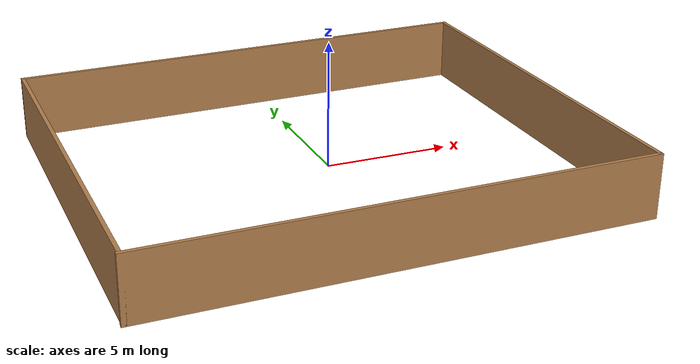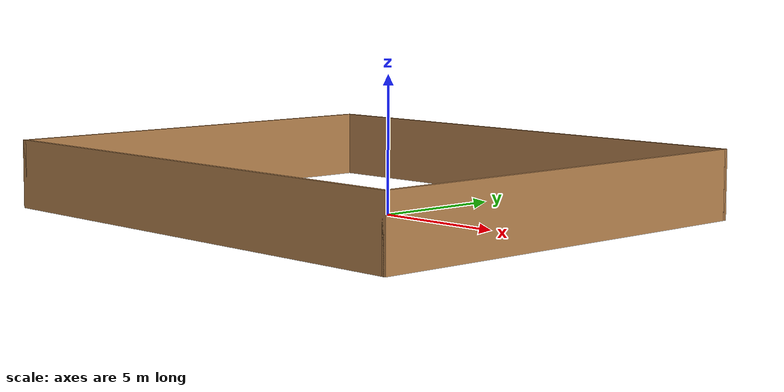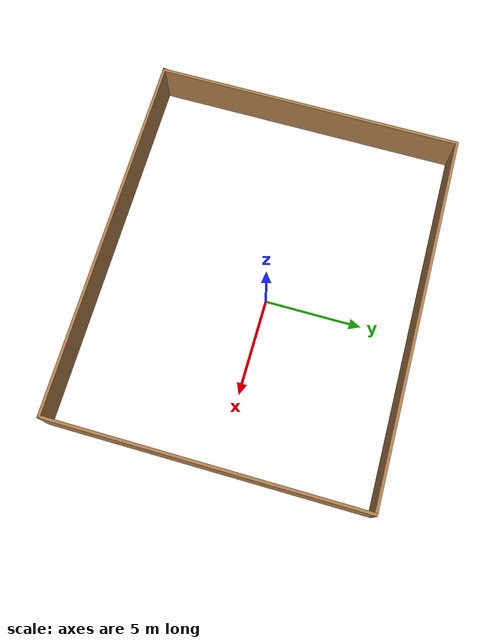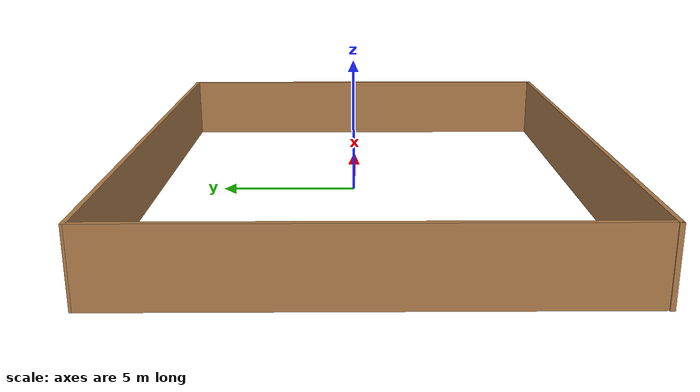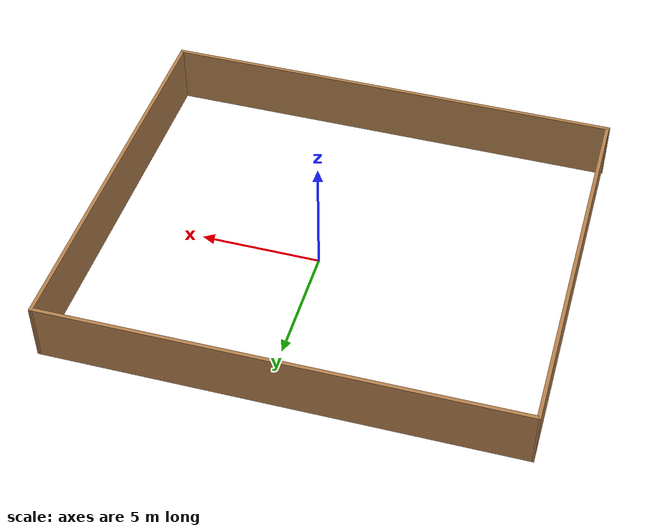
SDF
<?xml version='1.0'?>
<sdf version='1.7'>
  <model name='arena'>
    <pose>-0.665763 -0.436572 0 0 -0 0</pose>
    <link name='Wall_4'>
      <collision name='Wall_4_Collision'>
        <geometry>
          <box>
            <size>19.2427 0.15 2.5</size>
          </box>
        </geometry>
        <pose>0 0 1.25 0 -0 0</pose>
      </collision>
      <visual name='Wall_4_Visual'>
        <pose>0 0 1.25 0 -0 0</pose>
        <geometry>
          <box>
            <size>19.2427 0.15 2.5</size>
          </box>
        </geometry>
        <material>
          <script>
            <uri>file://media/materials/scripts/gazebo.material</uri>
            <name>Gazebo/Wood</name>
          </script>
          <ambient>1 1 1 1</ambient>
        </material>
        <meta>
          <layer>0</layer>
        </meta>
      </visual>
      <pose>-0.000489 -8.05049 0 0 -0 0</pose>
    </link>
    <link name='Wall_5'>
      <collision name='Wall_5_Collision'>
        <geometry>
          <box>
            <size>16.25 0.15 2.5</size>
          </box>
        </geometry>
        <pose>0 0 1.25 0 -0 0</pose>
      </collision>
      <visual name='Wall_5_Visual'>
        <pose>0 0 1.25 0 -0 0</pose>
        <geometry>
          <box>
            <size>16.25 0.15 2.5</size>
          </box>
        </geometry>
        <material>
          <script>
            <uri>file://media/materials/scripts/gazebo.material</uri>
            <name>Gazebo/Wood</name>
          </script>
          <ambient>1 1 1 1</ambient>
        </material>
        <meta>
          <layer>0</layer>
        </meta>
      </visual>
      <pose>9.54588 -0.000489 0 0 -0 1.5708</pose>
    </link>
    <link name='Wall_6'>
      <collision name='Wall_6_Collision'>
        <geometry>
          <box>
            <size>19.2039 0.15 2.5</size>
          </box>
        </geometry>
        <pose>0 0 1.25 0 -0 0</pose>
      </collision>
      <visual name='Wall_6_Visual'>
        <pose>0 0 1.25 0 -0 0</pose>
        <geometry>
          <box>
            <size>19.2039 0.15 2.5</size>
          </box>
        </geometry>
        <material>
          <script>
            <uri>file://media/materials/scripts/gazebo.material</uri>
            <name>Gazebo/Wood</name>
          </script>
          <ambient>1 1 1 1</ambient>
        </material>
        <meta>
          <layer>0</layer>
        </meta>
      </visual>
      <pose>0.019739 7.92451 0 0 -0 -3.12847</pose>
    </link>
    <link name='Wall_7'>
      <collision name='Wall_7_Collision'>
        <geometry>
          <box>
            <size>16 0.15 2.5</size>
          </box>
        </geometry>
        <pose>0 0 1.25 0 -0 0</pose>
      </collision>
      <visual name='Wall_7_Visual'>
        <pose>0 0 1.25 0 -0 0</pose>
        <geometry>
          <box>
            <size>16 0.15 2.5</size>
          </box>
        </geometry>
        <material>
          <script>
            <uri>file://media/materials/scripts/gazebo.material</uri>
            <name>Gazebo/Wood</name>
          </script>
          <ambient>1 1 1 1</ambient>
        </material>
        <meta>
          <layer>0</layer>
        </meta>
      </visual>
      <pose>-9.5064 -0.125489 0 0 -0 -1.5708</pose>
    </link>
    <static>1</static>
  </model>
</sdf>
